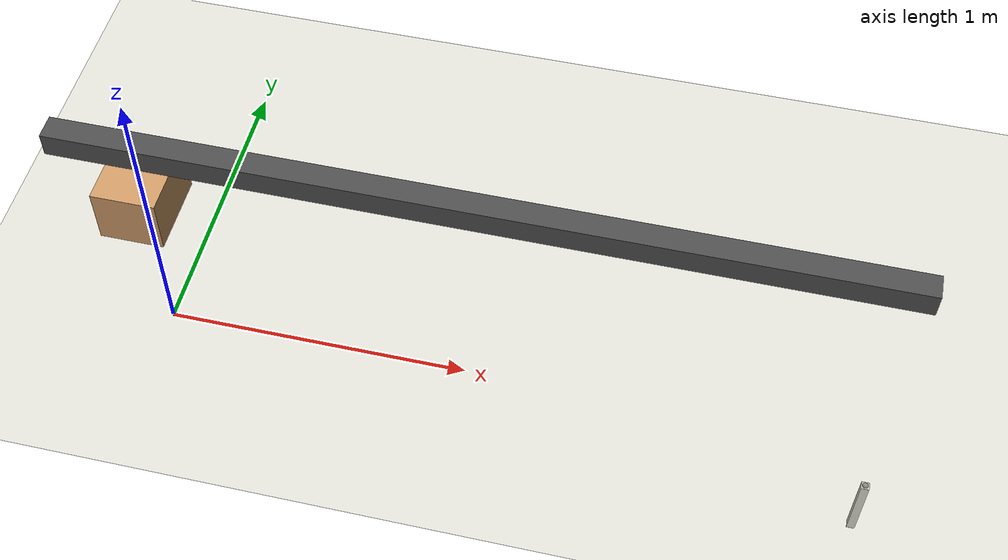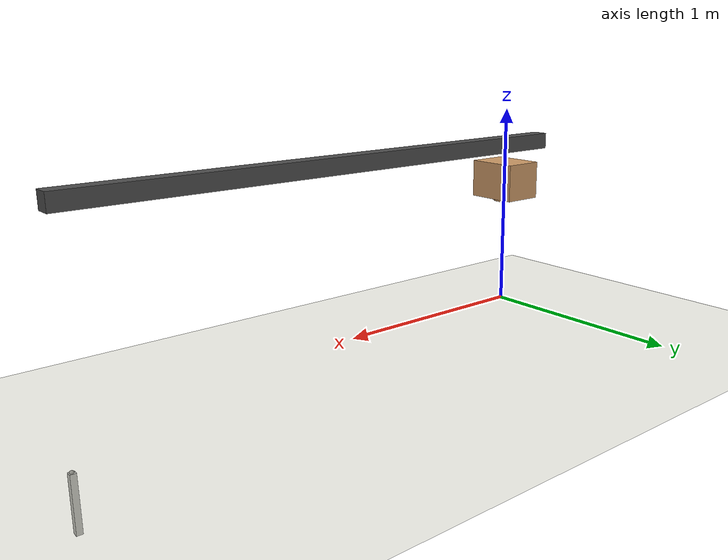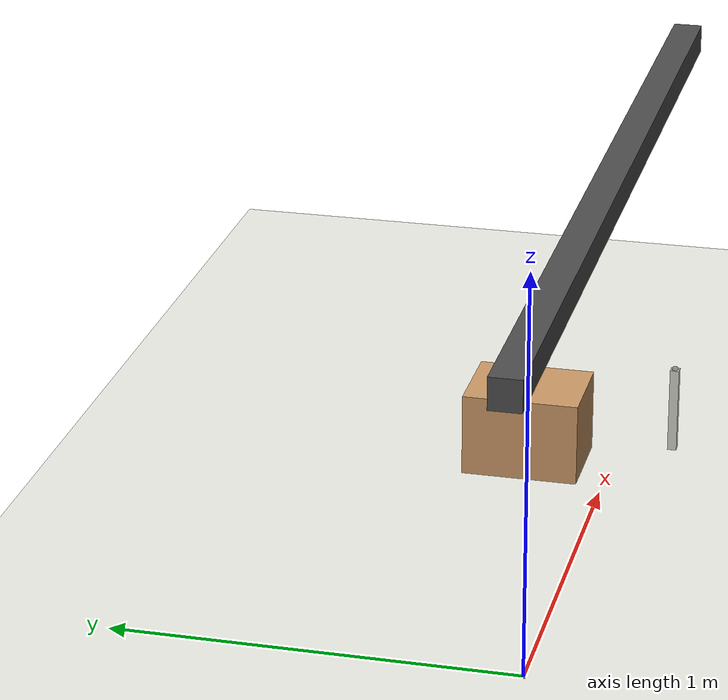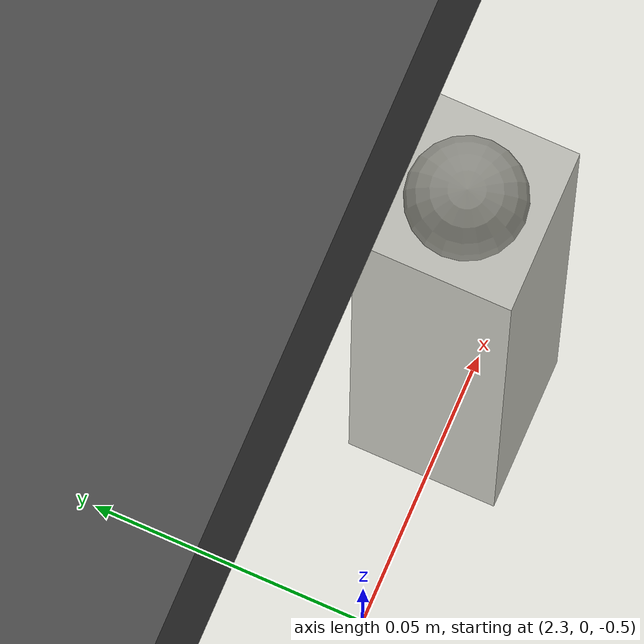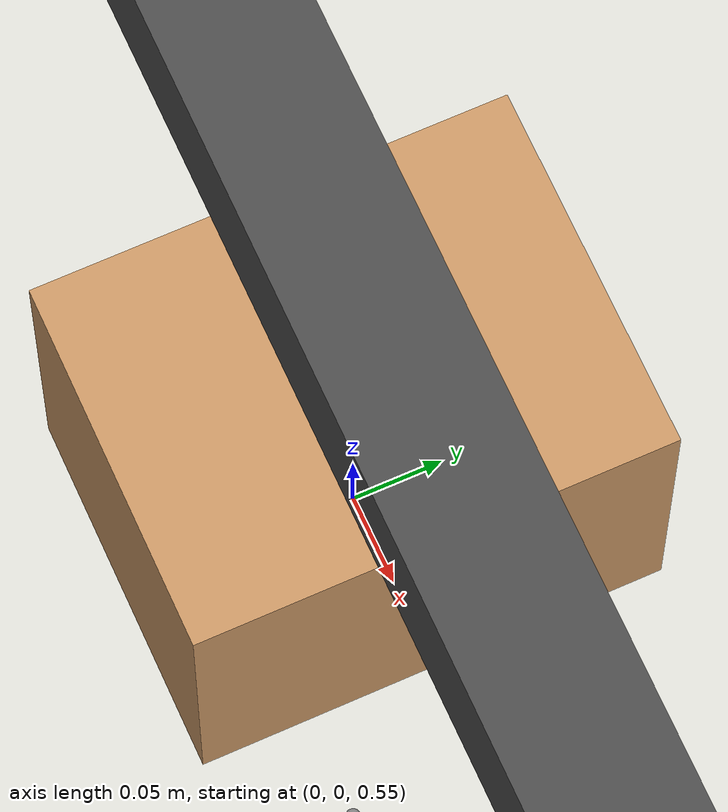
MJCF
<mujoco>

  <option integrator="implicitfast">
    <flag warmstart="enable" contact="disable"/>
  </option>
  <compiler autolimits="true" angle="radian"/>

  <visual>
    <global offwidth="1920"
            offheight="1080"/>
  </visual>

  <worldbody>
    <light diffuse="0.75 0.75 0.75" pos="0 0 10" dir="0 0 -1"/>

    <body name="floor" pos="0 0 1e-6" >
    <geom type="plane" size="15 15 0.1" rgba="0.7 0.7 0.6 0.3"/>

    <!-- MPT-50 is represented by base and cab bodies. Total weight is 13.8Kg -->
    <!-- motion platform height: 0.53m, base_geom half height = 0.042. base z = 0.53+0.042  = 0.0572 -->
    <body name="base" pos="0 0 0.572" euler="0 0 0">
      <geom name="base_geom"  type="cylinder" size="0.054 0.042 " rgba="0.8 0.6 0.4 1.0" mass="0.0"
            contype="0" conaffinity="0"/> <!-- mass was 6.0 -->
      <inertial mass="6.0" pos="0 0 0" diaginertia="0.007902 0.007902 0.008748"/>

      <!-- height of the centre point of the cab is at the middle point where the hoist cable is connected to the cab -->
      <!-- which is at 184mm/2 + 84mm/2 above the centre of the base_geom-->
      <body name="cab" pos="0 0 0.07">
        <geom name="cab_geom" type="box" size="0.100 0.128 0.092" rgba="0.8 0.6 0.4 1.0" mass="0.0"
              contype="0" conaffinity="0"/> <!-- mass was 7.8 -->
        <inertial mass="7.8" pos="0 0 0" diaginertia="0.064605 0.047906 0.068598"/>

        <!-- z-pos of slew-joint is at the height where base_geom and cab_geom are connected -->
        <joint name="slew-joint" type="hinge" axis="0 0 1" pos="0 0 0" limited="true"
               range="-1.3 1.3" armature="30.0"/>

        <!-- boom rear section is 26.5cm behind the centre of the cab mounting plate, i.e. boom half-length-26.5cm -->
        <!-- boom z-pos = 14cm above centre of the cab (luff actuator) + half-height of boom -->
        <body name="boom" pos="1.0367 0 0.179">
          <!-- total length of boom = 8ft + extension from front pulley module (7.5cm) and rear hoist module (9cm) -->
          <geom name="boom_geom" type="box" size="1.3017 0.039 0.039" rgba="0.3 0.3 0.3 1.0" mass="0.0"
                contype="0" conaffinity="0"/> <!-- mass was 0.0 -->
          <geom name="front_pulley_geom" pos="1.3017 0 0" type="sphere" size="0.04"
                rgba="0 0.5 0.5 0" mass="0.0"/> <!-- mass was 0.38 -->

          <!-- combined inertia of the boom_geom and the front_pulley_geom -->
          <inertial mass="2.214" pos="0.223417 0 0" diaginertia="0.0021042 1.5727772 1.5727772"/>

          <!-- 18cm of the CF-boom section is behind the luff-joint. so 1-ft in cm - 0.18 -->
          <!-- correct luff joint to the centre point of the cab measured from the mid-point of boom -->
          <joint name="luff-joint" type="hinge" pos="-1.0392 0 -0.179" axis="0 -1 0"
                 range="0.001 1.2" limited="true" armature="1200.0"
                 frictionloss="80"/> <!-- 80Nm of torque ((2.2kg * 0.22m) + (3kg * 2.5m) * 10x)-->

          <body name="boom_tip" pos="1.3017 0 -0.039">
            <geom name="boom_tip_geom" pos="0 0 0" type="sphere" size="0.01" rgba="0.3 0.3 0.3 0" />
            <site name="b_tip" pos="0 0 0" rgba="1 0 0 0" size="0.01" />

            <joint name="boom-tip-beta-hinge" type="hinge" axis="1 0 0" limited="true"
                   range="-1.5 1.5" damping="1e-2" armature="1e-4"/>
            <joint name="boom-tip-phi-hinge" type="hinge" axis="0 1 0" limited="true"
                   range="-1.5 1.5" damping="1e-2" armature="1e-4"/>
            <joint name="hoist-slider" type="slide" axis="0 0 -1" limited="true"
                   range="0.07 2.5" ref="1.0" armature="150.0"
                   frictionloss="30"/> <!-- 30N/3kg of friction to prevent payload motion when still -->

            <body name="payload_tip" pos="0 0 -1.0">
              <geom name="p_tip_geom" type="sphere" size=".02" rgba="1 1 0 0" mass="0.0"
                    contype="0" conaffinity="0"/> <!-- mass was 0.01 -->
              <inertial mass="0.01" pos="0 0 0" diaginertia="0.0000016 0.0000016 0.0000016"/>

              <site name="p_tip" pos="0 0 0" size="0.01"/>
              <joint name="p-tip-eta-hinge" type="hinge" axis="1 0 0" damping="1e-2"
                     limited="true" range="-1.5 1.5" armature="1e-4"/>
              <joint name="p-tip-sigma-hinge" type="hinge" axis="0 1 0" damping="1e-2"
                     limited="true" range="-1.5 1.5" armature="1e-4"/>

                <body name="payload" pos="0 0 0">
                  <geom name="payload_geom" pos="0 0 -0.13" type="box"
                        size="0.0135 0.0135 0.13" rgba="0.8 0.8 0.8 1" mass="0.0"
                        contype="0" conaffinity="0"/> <!-- mass was 0.2 -->
                  <inertial mass="0.2" pos="0 0 -0.13" diaginertia="0.0011388 0.0011388 0.0000243"/>
                  <site name="p_cg" pos="0 0 -0.13"/>

                </body> <!-- payload -->
              </body> <!-- payload tip -->
            </body> <!-- boom tip -->
          </body> <!-- boom -->
        </body> <!-- cab -->
      </body> <!-- base -->
    </body> <!-- floor -->

    <!-- visualisation for the target position to move the payload to -->
    <!-- disabled currently, alpha set to 0.0 -->
    <body name="target" mocap="true" pos="0 0 0">
      <geom name="target_geom" type="sphere" size="0.15" rgba="1 0.7 0 0.0"
            contype="0" conaffinity="0"/>
      <site name="target_marker" pos="0 0 0"/>
    </body>

  </worldbody>

<actuator>

  <!-- Pareton turnings 5th Jun 25-->

  <!-- tunings Luke 24th Jul 25 (adjusted joint params above too)-->
  <velocity name="slew-velocity" joint="slew-joint" ctrlrange="-0.9 0.9" kv="400.0"/>
  <velocity name="luff-velocity" joint="luff-joint" ctrlrange="-0.48 0.48" kv="20000.0"/>
  <velocity name="hoist-velocity" joint="hoist-slider" ctrlrange="-1.33 1.33" kv="2000.0"/>

</actuator>

  <sensor>

    <!-- Oscars sensors -->
    <jointactuatorfrc name="slew_joint_frc" joint="slew-joint" />
    <jointactuatorfrc name="luff_joint_frc" joint="luff-joint" />
    <actuatorfrc name="slew_act_frc" actuator="slew-velocity" />
    <actuatorfrc name="luff_act_frc" actuator="luff-velocity" />
    <actuatorvel name="slew_act_vel" actuator="slew-velocity" />
    <actuatorvel name="luff_act_vel" actuator="luff-velocity" />

    <!-- my sensors -->
    <framepos name="payload_position" objtype="site" objname="p_cg" />
    <framequat name="payload_orientation" objtype="site" objname="p_cg" />
    <framelinvel name="payload_linear_velocity" objtype="site" objname="p_cg" />
    <frameangvel name="payload_angular_velocity" objtype="site" objname="p_cg" />
    <framelinacc name="payload_linear_acceleration" objtype="site" objname="p_cg" />
    <framepos name="boom_tip_position" objtype="site" objname="b_tip" />

  </sensor>

</mujoco>
